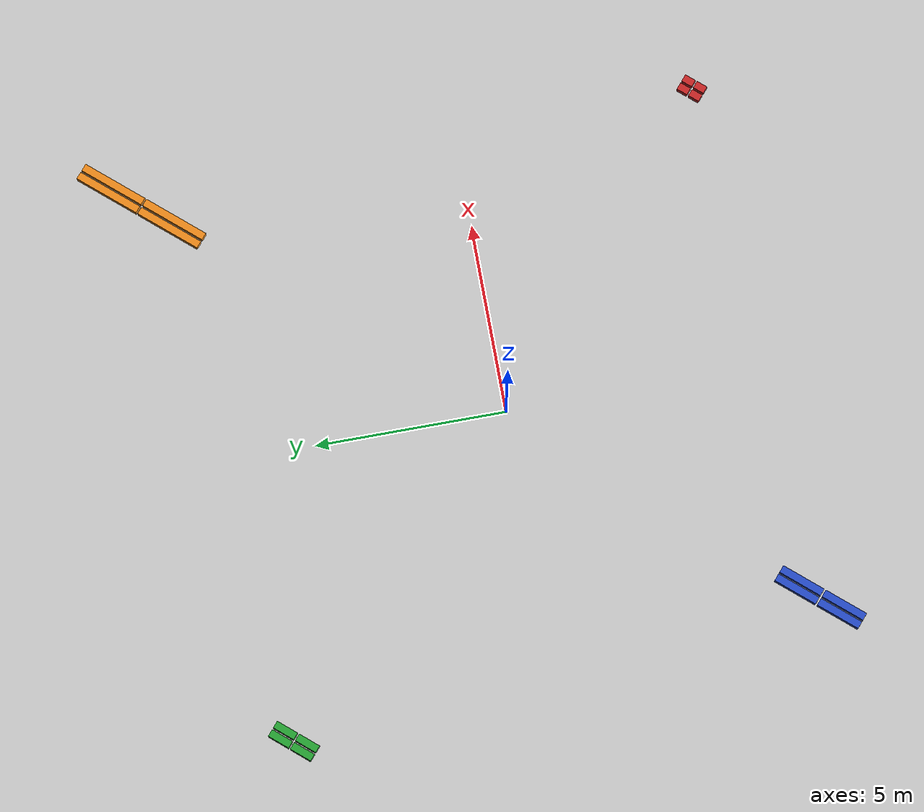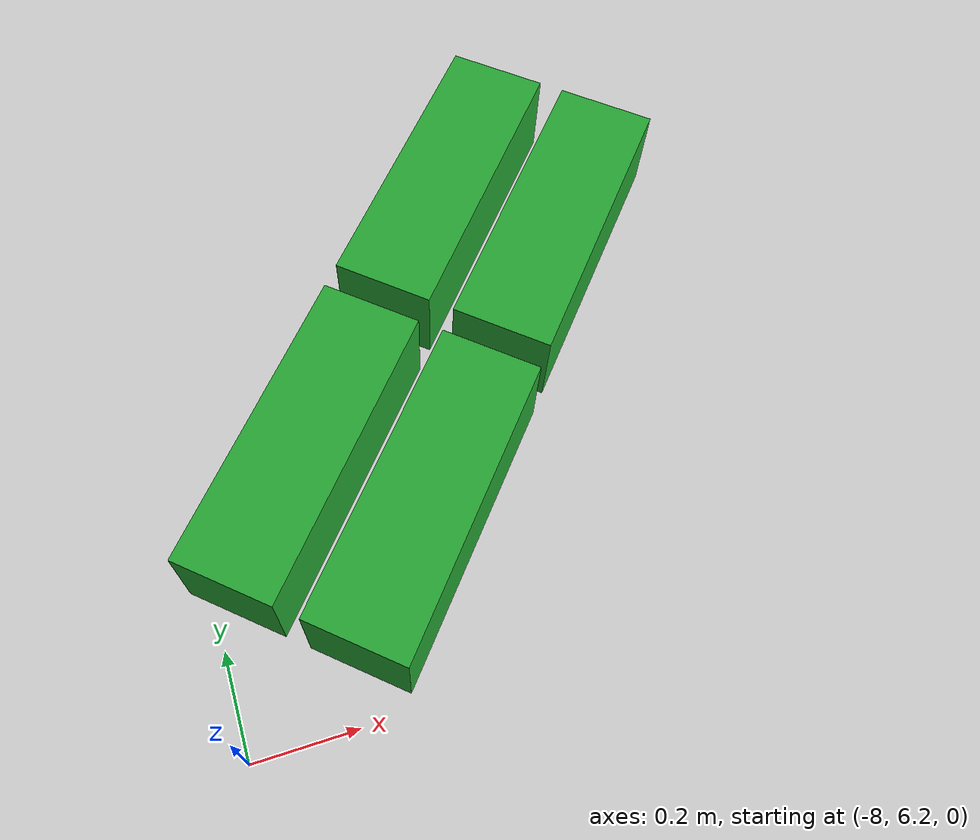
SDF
<?xml version="1.0" ?>
<!-- |    This document was autogenerated by xacro from challenge2.world.xacro         | -->
<!-- |    EDITING THIS FILE BY HAND IS NOT RECOMMENDED                                 | -->
<sdf version="1.4" xmlns:xacro="http://www.ros.org/wiki/xacro">
  <world name="default">
    <include>
      <uri>model://ground_plane</uri>
    </include>
    <include>
      <uri>model://sun</uri>
    </include>
    <model name="1.pile">
      <pose>6.52437468164 7.57842562895 0 0 0 0.86</pose>
      <model name="1.0.pile">
        <link name="0.brick">
          <pose>0.0 0.0 0.1 0 0 0</pose>
          <inertial>
            <mass>2.0</mass>
            <inertia>
              <ixx>0.0133333333333</ixx>
              <ixy>0</ixy>
              <ixz>0</ixz>
              <iyy>0.546666666667</iyy>
              <iyz>0</iyz>
              <izz>0.546666666667</izz>
            </inertia>
          </inertial>
          <visual name="visual">
            <material>
              <script>
                <uri>gazebo.material</uri>
                <name>Gazebo/Orange</name>
              </script>
            </material>
            <geometry>
              <box>
                <size>1.8 0.2 0.2</size>
              </box>
            </geometry>
          </visual>
          <collision name="collision">
            <geometry>
              <box>
                <size>1.8 0.2 0.2</size>
              </box>
            </geometry>
          </collision>
        </link>
      </model>
      <model name="1.1.pile">
        <link name="1.brick">
          <pose>0.0 0.25 0.1 0 0 0</pose>
          <inertial>
            <mass>2.0</mass>
            <inertia>
              <ixx>0.0133333333333</ixx>
              <ixy>0</ixy>
              <ixz>0</ixz>
              <iyy>0.546666666667</iyy>
              <iyz>0</iyz>
              <izz>0.546666666667</izz>
            </inertia>
          </inertial>
          <visual name="visual">
            <material>
              <script>
                <uri>gazebo.material</uri>
                <name>Gazebo/Orange</name>
              </script>
            </material>
            <geometry>
              <box>
                <size>1.8 0.2 0.2</size>
              </box>
            </geometry>
          </visual>
          <collision name="collision">
            <geometry>
              <box>
                <size>1.8 0.2 0.2</size>
              </box>
            </geometry>
          </collision>
        </link>
      </model>
      <model name="1.2.pile">
        <link name="2.brick">
          <pose>1.85 0.0 0.1 0 0 0</pose>
          <inertial>
            <mass>2.0</mass>
            <inertia>
              <ixx>0.0133333333333</ixx>
              <ixy>0</ixy>
              <ixz>0</ixz>
              <iyy>0.546666666667</iyy>
              <iyz>0</iyz>
              <izz>0.546666666667</izz>
            </inertia>
          </inertial>
          <visual name="visual">
            <material>
              <script>
                <uri>gazebo.material</uri>
                <name>Gazebo/Orange</name>
              </script>
            </material>
            <geometry>
              <box>
                <size>1.8 0.2 0.2</size>
              </box>
            </geometry>
          </visual>
          <collision name="collision">
            <geometry>
              <box>
                <size>1.8 0.2 0.2</size>
              </box>
            </geometry>
          </collision>
        </link>
      </model>
      <model name="1.3.pile">
        <link name="3.brick">
          <pose>1.85 0.25 0.1 0 0 0</pose>
          <inertial>
            <mass>2.0</mass>
            <inertia>
              <ixx>0.0133333333333</ixx>
              <ixy>0</ixy>
              <ixz>0</ixz>
              <iyy>0.546666666667</iyy>
              <iyz>0</iyz>
              <izz>0.546666666667</izz>
            </inertia>
          </inertial>
          <visual name="visual">
            <material>
              <script>
                <uri>gazebo.material</uri>
                <name>Gazebo/Orange</name>
              </script>
            </material>
            <geometry>
              <box>
                <size>1.8 0.2 0.2</size>
              </box>
            </geometry>
          </visual>
          <collision name="collision">
            <geometry>
              <box>
                <size>1.8 0.2 0.2</size>
              </box>
            </geometry>
          </collision>
        </link>
      </model>
    </model>
    <model name="2.pile">
      <pose>-6.52437468164 -7.57842562895 0 0 0 0.86</pose>
      <model name="2.0.pile">
        <link name="0.brick">
          <pose>0.0 0.0 0.1 0 0 0</pose>
          <inertial>
            <mass>1.5</mass>
            <inertia>
              <ixx>0.01</ixx>
              <ixy>0</ixy>
              <ixz>0</ixz>
              <iyy>0.185</iyy>
              <iyz>0</iyz>
              <izz>0.185</izz>
            </inertia>
          </inertial>
          <visual name="visual">
            <material>
              <script>
                <uri>gazebo.material</uri>
                <name>Gazebo/Blue</name>
              </script>
            </material>
            <geometry>
              <box>
                <size>1.2 0.2 0.2</size>
              </box>
            </geometry>
          </visual>
          <collision name="collision">
            <geometry>
              <box>
                <size>1.2 0.2 0.2</size>
              </box>
            </geometry>
          </collision>
        </link>
      </model>
      <model name="2.1.pile">
        <link name="1.brick">
          <pose>0.0 0.25 0.1 0 0 0</pose>
          <inertial>
            <mass>1.5</mass>
            <inertia>
              <ixx>0.01</ixx>
              <ixy>0</ixy>
              <ixz>0</ixz>
              <iyy>0.185</iyy>
              <iyz>0</iyz>
              <izz>0.185</izz>
            </inertia>
          </inertial>
          <visual name="visual">
            <material>
              <script>
                <uri>gazebo.material</uri>
                <name>Gazebo/Blue</name>
              </script>
            </material>
            <geometry>
              <box>
                <size>1.2 0.2 0.2</size>
              </box>
            </geometry>
          </visual>
          <collision name="collision">
            <geometry>
              <box>
                <size>1.2 0.2 0.2</size>
              </box>
            </geometry>
          </collision>
        </link>
      </model>
      <model name="2.2.pile">
        <link name="2.brick">
          <pose>1.25 0.0 0.1 0 0 0</pose>
          <inertial>
            <mass>1.5</mass>
            <inertia>
              <ixx>0.01</ixx>
              <ixy>0</ixy>
              <ixz>0</ixz>
              <iyy>0.185</iyy>
              <iyz>0</iyz>
              <izz>0.185</izz>
            </inertia>
          </inertial>
          <visual name="visual">
            <material>
              <script>
                <uri>gazebo.material</uri>
                <name>Gazebo/Blue</name>
              </script>
            </material>
            <geometry>
              <box>
                <size>1.2 0.2 0.2</size>
              </box>
            </geometry>
          </visual>
          <collision name="collision">
            <geometry>
              <box>
                <size>1.2 0.2 0.2</size>
              </box>
            </geometry>
          </collision>
        </link>
      </model>
      <model name="2.3.pile">
        <link name="3.brick">
          <pose>1.25 0.25 0.1 0 0 0</pose>
          <inertial>
            <mass>1.5</mass>
            <inertia>
              <ixx>0.01</ixx>
              <ixy>0</ixy>
              <ixz>0</ixz>
              <iyy>0.185</iyy>
              <iyz>0</iyz>
              <izz>0.185</izz>
            </inertia>
          </inertial>
          <visual name="visual">
            <material>
              <script>
                <uri>gazebo.material</uri>
                <name>Gazebo/Blue</name>
              </script>
            </material>
            <geometry>
              <box>
                <size>1.2 0.2 0.2</size>
              </box>
            </geometry>
          </visual>
          <collision name="collision">
            <geometry>
              <box>
                <size>1.2 0.2 0.2</size>
              </box>
            </geometry>
          </collision>
        </link>
      </model>
    </model>
    <model name="3.pile">
      <pose>-7.57842562895 6.52437468164 0 0 0 0.86</pose>
      <model name="3.0.pile">
        <link name="0.brick">
          <pose>0.0 0.0 0.1 0 0 0</pose>
          <inertial>
            <mass>1.0</mass>
            <inertia>
              <ixx>0.00666666666667</ixx>
              <ixy>0</ixy>
              <ixz>0</ixz>
              <iyy>0.0333333333333</iyy>
              <iyz>0</iyz>
              <izz>0.0333333333333</izz>
            </inertia>
          </inertial>
          <visual name="visual">
            <material>
              <script>
                <uri>gazebo.material</uri>
                <name>Gazebo/Green</name>
              </script>
            </material>
            <geometry>
              <box>
                <size>0.6 0.2 0.2</size>
              </box>
            </geometry>
          </visual>
          <collision name="collision">
            <geometry>
              <box>
                <size>0.6 0.2 0.2</size>
              </box>
            </geometry>
          </collision>
        </link>
      </model>
      <model name="3.1.pile">
        <link name="1.brick">
          <pose>0.0 0.25 0.1 0 0 0</pose>
          <inertial>
            <mass>1.0</mass>
            <inertia>
              <ixx>0.00666666666667</ixx>
              <ixy>0</ixy>
              <ixz>0</ixz>
              <iyy>0.0333333333333</iyy>
              <iyz>0</iyz>
              <izz>0.0333333333333</izz>
            </inertia>
          </inertial>
          <visual name="visual">
            <material>
              <script>
                <uri>gazebo.material</uri>
                <name>Gazebo/Green</name>
              </script>
            </material>
            <geometry>
              <box>
                <size>0.6 0.2 0.2</size>
              </box>
            </geometry>
          </visual>
          <collision name="collision">
            <geometry>
              <box>
                <size>0.6 0.2 0.2</size>
              </box>
            </geometry>
          </collision>
        </link>
      </model>
      <model name="3.2.pile">
        <link name="2.brick">
          <pose>0.65 0.0 0.1 0 0 0</pose>
          <inertial>
            <mass>1.0</mass>
            <inertia>
              <ixx>0.00666666666667</ixx>
              <ixy>0</ixy>
              <ixz>0</ixz>
              <iyy>0.0333333333333</iyy>
              <iyz>0</iyz>
              <izz>0.0333333333333</izz>
            </inertia>
          </inertial>
          <visual name="visual">
            <material>
              <script>
                <uri>gazebo.material</uri>
                <name>Gazebo/Green</name>
              </script>
            </material>
            <geometry>
              <box>
                <size>0.6 0.2 0.2</size>
              </box>
            </geometry>
          </visual>
          <collision name="collision">
            <geometry>
              <box>
                <size>0.6 0.2 0.2</size>
              </box>
            </geometry>
          </collision>
        </link>
      </model>
      <model name="3.3.pile">
        <link name="3.brick">
          <pose>0.65 0.25 0.1 0 0 0</pose>
          <inertial>
            <mass>1.0</mass>
            <inertia>
              <ixx>0.00666666666667</ixx>
              <ixy>0</ixy>
              <ixz>0</ixz>
              <iyy>0.0333333333333</iyy>
              <iyz>0</iyz>
              <izz>0.0333333333333</izz>
            </inertia>
          </inertial>
          <visual name="visual">
            <material>
              <script>
                <uri>gazebo.material</uri>
                <name>Gazebo/Green</name>
              </script>
            </material>
            <geometry>
              <box>
                <size>0.6 0.2 0.2</size>
              </box>
            </geometry>
          </visual>
          <collision name="collision">
            <geometry>
              <box>
                <size>0.6 0.2 0.2</size>
              </box>
            </geometry>
          </collision>
        </link>
      </model>
    </model>
    <model name="4.pile">
      <pose>7.57842562895 -6.52437468164 0 0 0 0.86</pose>
      <model name="4.0.pile">
        <link name="0.brick">
          <pose>0.0 0.0 0.1 0 0 0</pose>
          <inertial>
            <mass>1.0</mass>
            <inertia>
              <ixx>0.00666666666667</ixx>
              <ixy>0</ixy>
              <ixz>0</ixz>
              <iyy>0.0108333333333</iyy>
              <iyz>0</iyz>
              <izz>0.0108333333333</izz>
            </inertia>
          </inertial>
          <visual name="visual">
            <material>
              <script>
                <uri>gazebo.material</uri>
                <name>Gazebo/Red</name>
              </script>
            </material>
            <geometry>
              <box>
                <size>0.3 0.2 0.2</size>
              </box>
            </geometry>
          </visual>
          <collision name="collision">
            <geometry>
              <box>
                <size>0.3 0.2 0.2</size>
              </box>
            </geometry>
          </collision>
        </link>
      </model>
      <model name="4.1.pile">
        <link name="1.brick">
          <pose>0.0 0.25 0.1 0 0 0</pose>
          <inertial>
            <mass>1.0</mass>
            <inertia>
              <ixx>0.00666666666667</ixx>
              <ixy>0</ixy>
              <ixz>0</ixz>
              <iyy>0.0108333333333</iyy>
              <iyz>0</iyz>
              <izz>0.0108333333333</izz>
            </inertia>
          </inertial>
          <visual name="visual">
            <material>
              <script>
                <uri>gazebo.material</uri>
                <name>Gazebo/Red</name>
              </script>
            </material>
            <geometry>
              <box>
                <size>0.3 0.2 0.2</size>
              </box>
            </geometry>
          </visual>
          <collision name="collision">
            <geometry>
              <box>
                <size>0.3 0.2 0.2</size>
              </box>
            </geometry>
          </collision>
        </link>
      </model>
      <model name="4.2.pile">
        <link name="2.brick">
          <pose>0.35 0.0 0.1 0 0 0</pose>
          <inertial>
            <mass>1.0</mass>
            <inertia>
              <ixx>0.00666666666667</ixx>
              <ixy>0</ixy>
              <ixz>0</ixz>
              <iyy>0.0108333333333</iyy>
              <iyz>0</iyz>
              <izz>0.0108333333333</izz>
            </inertia>
          </inertial>
          <visual name="visual">
            <material>
              <script>
                <uri>gazebo.material</uri>
                <name>Gazebo/Red</name>
              </script>
            </material>
            <geometry>
              <box>
                <size>0.3 0.2 0.2</size>
              </box>
            </geometry>
          </visual>
          <collision name="collision">
            <geometry>
              <box>
                <size>0.3 0.2 0.2</size>
              </box>
            </geometry>
          </collision>
        </link>
      </model>
      <model name="4.3.pile">
        <link name="3.brick">
          <pose>0.35 0.25 0.1 0 0 0</pose>
          <inertial>
            <mass>1.0</mass>
            <inertia>
              <ixx>0.00666666666667</ixx>
              <ixy>0</ixy>
              <ixz>0</ixz>
              <iyy>0.0108333333333</iyy>
              <iyz>0</iyz>
              <izz>0.0108333333333</izz>
            </inertia>
          </inertial>
          <visual name="visual">
            <material>
              <script>
                <uri>gazebo.material</uri>
                <name>Gazebo/Red</name>
              </script>
            </material>
            <geometry>
              <box>
                <size>0.3 0.2 0.2</size>
              </box>
            </geometry>
          </visual>
          <collision name="collision">
            <geometry>
              <box>
                <size>0.3 0.2 0.2</size>
              </box>
            </geometry>
          </collision>
        </link>
      </model>
    </model>
   </world>
</sdf>
